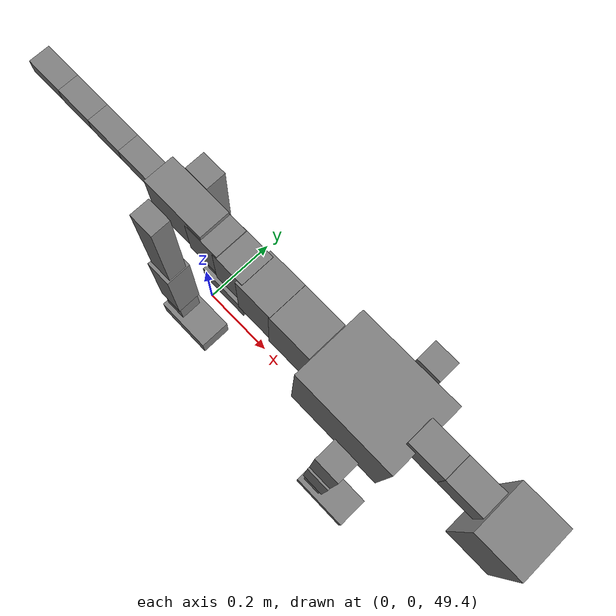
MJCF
<mujoco model="dog">

    <default>
        <joint armature="0.02" stiffness="1" damping="0.2" limited="true"/>
        <geom condim="3" friction="1 0.05 0.05" margin="0.01"/>
        <motor ctrllimited="true" ctrlrange="-1.0 1.0" forcelimited="true" gear="50"/>
    </default>

    <compiler inertiafromgeom="true" angle="radian"/>

    <option timestep="0.016" iterations="50" tolerance="1e-10" solver="Newton" jacobian="dense" cone="pyramidal"/>

    <size nconmax="20000" njmax="60000" nstack="5000000"/>
    <visual>
        <map force="0.1" zfar="30"/>
        <rgba haze="0.15 0.25 0.35 1"/>
        <quality shadowsize="2048"/>
        <global offwidth="800" offheight="800"/>
    </visual>

    <asset>
        <texture type="skybox" builtin="gradient" rgb1="0.3 0.5 0.7" rgb2="0 0 0" width="512" height="512"/>
        <texture name="texplane" type="2d" builtin="checker" rgb1=".2 .3 .4" rgb2=".1 0.15 0.2" width="512" height="512"
                 mark="cross" markrgb=".8 .8 .8"/>
        <texture name="texgeom" type="cube" builtin="flat" mark="cross" width="127" height="1278" rgb1="0.8 0.6 0.4"
                 rgb2="0.8 0.6 0.4" markrgb="1 1 1" random="0.01"/>

        <material name="matplane" reflectance="0.3" texture="texplane" texrepeat="1 1" texuniform="true"/>
        <material name="matgeom" texture="texgeom" texuniform="true" rgba="0.8 0.6 .4 1"/>
    </asset>

    <worldbody>
        <geom name="floor" pos="0 0 0" size="0 0 .25" type="plane" material="matplane" condim="3"/>

        <light directional="false" diffuse=".2 .2 .2" specular="0 0 0" pos="0 0 5" dir="0 0 -1" castshadow="false"/>
        <light mode="targetbodycom" target="torso" directional="false" diffuse=".8 .8 .8" specular="0.3 0.3 0.3"
               pos="0 0 4.0" dir="0 0 -1"/>

        <body name="root" pos="0 0 50">
            <freejoint name="root_1"/>
            <geom type="box" pos="0 0 -0.02" size="0.0774  0.0358  0.063" density="2030"/>

            <body name="spine1" pos="0.054 0 0">
                <joint name="spine1_y" axis="0 1 0" range="0 0.7" limited="true"/>
                <geom type="box" pos="0.02375 0 -0.03" size="0.04375  0.0375  0.05985" density="2030"/>

                <body name="spine2" pos="0.0612 0 0">
                    <joint name="spine2_y" axis="0 1 0" range="-0.15 0.15" limited="true"/>
                    <geom type="box" pos="0.03555  0  -0.04" size="0.04055  0.039  0.06615" density="2030"/>

                    <body name="spine3" pos="0.0730 0 0">
                        <joint name="spine3_y" axis="0 1 0" range="-0.15 0.15" limited="true"/>
                        <geom type="box" pos="0.03555  0  -0.057" size="0.04555  0.0445  0.081" density="2030"/>

                        <body name="spine4" pos="0.0780 0 0">
                            <joint name="spine4_y" axis="0 1 0" range="-0.15 0.15" limited="true"/>
                            <geom type="box" pos="0.05265  0  -0.07" size="0.05265  0.045  0.09135" density="2030"/>

                            <body name="torso" pos="0.1082 0 0">
                                <joint name="torso_y" axis="0 1 0" range="-0.15 0.15" limited="true"/>
                                <geom type="box" pos="0.11925  0  -0.085" size="0.11925  0.085  0.11745"
                                      density="2030"/>

                                <body name="neck1" pos="0.2160  0   0.0180">
                                    <joint name="neck1_y" axis="0 1 0" range="-1.2  -1" limited="true"/>
                                    <geom type="box" pos="0.0423  0  0" size="0.0423  0.03  0.036" density="2325"/>

                                    <body name="neck2" pos="0.0853  0  0">
                                        <joint name="neck2_y" axis="0 1 0" range="0.1  0" limited="true"/>
                                        <geom type="box" pos="0.0423  0  0" size="0.0423  0.03  0.036" density="2325"/>

                                        <body name="head" pos="0.0853  0  0">
                                            <joint name="head_y" axis="0 1 0" range="-0.3  -0.2" limited="true"/>
                                            <geom type="box" pos="0.0531  0  -0.055" size="0.0531  0.06  0.1044"
                                                  density="4030"/>

                                        </body>
                                    </body>
                                </body>

                                <body name="front_shoulder" pos="0.156  0   -0.0480">
                                    <joint name="front_shoulder_y" axis="0 1 0" range="-1 1.5" limited="true"/>
                                    <geom type="box" pos="0 0.13 -0.0906" size="0.0295  0.0252  0.1173" density="1158"/>
                                    <geom type="box" pos="0 -0.13 -0.0906" size="0.0295  0.0252  0.1173"
                                          density="1158"/>

                                    <body name="front_elbow" pos="0  0  -0.1812">
                                        <joint name="front_elbow_y" axis="0 1 0" range="-2 0" limited="true"/>
                                        <geom type="box" pos="0 0.13 -0.1123" size="0.0297  0.0304  0.1123"
                                              density="1081"/>
                                        <geom type="box" pos="0 -0.13 -0.1123" size="0.0297  0.0304  0.1123"
                                              density="1081"/>

                                        <body name="front_wrist" pos="0  0  -0.2246">
                                            <joint name="front_wrist_y" axis="0 1 0" range="-0.2 0" limited="true"/>
                                            <geom type="box" pos="0 0.13 -0.0558" size="0.0249  0.0277  0.0690"
                                                  density="1664"/>
                                            <geom type="box" pos="0 -0.13 -0.0558" size="0.0249  0.0277  0.0690"
                                                  density="1664"/>

                                            <body name="front_finger_end" pos="0  0  -0.1117">
                                                <joint name="front_finger_y" axis="0 1 0" range="-0.4 1"
                                                       limited="true"/>
                                                <geom type="box" pos="0.0405  0.13  -0.0141"
                                                      size="0.0742  0.0405  0.0291" density="1515"/>
                                                <geom type="box" pos="0.0405  -0.13  -0.0141"
                                                      size="0.0742  0.0405  0.0291" density="1515"/>

                                            </body>

                                        </body>
                                    </body>
                                </body>

                            </body>
                        </body>
                    </body>
                </body>
            </body>

            <body name="back_hip" pos="-0.03 0 -0.018">
                <joint name="back_hip_y" axis="0 1 0" range="-1.5 0.3" limited="true"/>
                <geom type="box" pos="0 0.07 -0.1318" size="0.0306  0.0240  0.1546" density="1154"/>
                <geom type="box" pos="0 -0.07 -0.1318" size="0.0306  0.0240  0.1546" density="1154"/>

                <body name="back_knee" pos="0  0  -0.2636">
                    <joint name="back_knee_y" axis="0 1 0" range="0 2.8" limited="true"/>
                    <geom type="box" pos="0 0.07 -0.0984" size="0.0332  0.0327  0.1140" density="1227"/>
                    <geom type="box" pos="0 -0.07 -0.0984" size="0.0332  0.0327  0.1140" density="1227"/>

                    <body name="back_ankle" pos="0  0  -0.1968">
                        <joint name="back_ankle_y" axis="0 1 0" range="-2.2 0" limited="true"/>
                        <geom type="box" pos="0 0.07 -0.0565" size="0.0285  0.0285  0.0677" density="1284"/>
                        <geom type="box" pos="0 -0.07 -0.0565" size="0.0285  0.0285  0.0677" density="1284"/>

                        <body name="back_toe_end" pos="0  0  -0.1129">
                            <joint name="back_toe_y" axis="0 1 0" range="-0.4 1" limited="true"/>
                            <geom type="box" pos="0.0419  0.07  -0.0168" size="0.0769  0.0419  0.0318" density="1515"/>
                            <geom type="box" pos="0.0419  -0.07  -0.0168" size="0.0769  0.0419  0.0318" density="1515"/>

                        </body>
                    </body>
                </body>
            </body>

            <body name="tail1" pos="-0.074 0 -0.006">
                <joint name="tail1_y" axis="0 1 0" range="-0.2 0.2" limited="true"/>
                <geom type="box" pos="-0.0536  0  0" size="0.045  0.025  0.0175" density="1587"/>

                <body name="tail2" pos="-0.09 0 0">
                    <joint name="tail2_y" axis="0 1 0" range="-0.2 0.2" limited="true"/>
                    <geom type="box" pos="-0.0536  0  0" size="0.045  0.025  0.0175" density="1587"/>

                    <body name="tail3" pos="-0.09 0 0">
                        <joint name="tail3_y" axis="0 1 0" range="-0.2 0.2" limited="true"/>
                        <geom type="box" pos="-0.0536  0  0" size="0.045  0.025  0.0175" density="1587"/>

                        <body name="tail4" pos="-0.09 0 0">
                            <joint name="tail4_y" axis="0 1 0" range="-0.2 0.2" limited="true"/>
                            <geom type="box" pos="-0.0536  0  0" size="0.045  0.025  0.0175" density="1587"/>

                        </body>
                    </body>
                </body>
            </body>
        </body>
    </worldbody>

    <actuator>
        <motor joint="spine1_y" forcerange="-150 150     "/>
        <motor joint="spine2_y" forcerange="-150 150     "/>
        <motor joint="spine3_y" forcerange="-150 150     "/>
        <motor joint="spine4_y" forcerange="-150 150     "/>
        <motor joint="torso_y" forcerange="-150 150     "/>
        <motor joint="neck1_y" forcerange="-100 100       "/>
        <motor joint="neck2_y" forcerange="-100 100       "/>
        <motor joint="head_y" forcerange="-150 150       "/>
        <motor joint="front_shoulder_y" forcerange="-114.21 154.09"/>
        <motor joint="front_elbow_y" forcerange="-129.85 191.04"/>
        <motor joint="front_wrist_y" forcerange="-96.52 125.17"/>
        <motor joint="front_finger_y" forcerange="-95.30 80.55"/>
        <motor joint="back_hip_y" forcerange="-231.41 288.40"/>
        <motor joint="back_knee_y" forcerange="-285.69 390.33"/>
        <motor joint="back_angle_y" forcerange="-171.78 183.92"/>
        <motor joint="back_toe_y" forcerange="-136.38 118.98"/>
        <motor joint="tail1_y" forcerange="-50 50     "/>
        <motor joint="tail2_y" forcerange="-50 50     "/>
        <motor joint="tail3_y" forcerange="-50 50     "/>
        <motor joint="tail4_y" forcerange="-50 50     "/>
    </actuator>
</mujoco>
